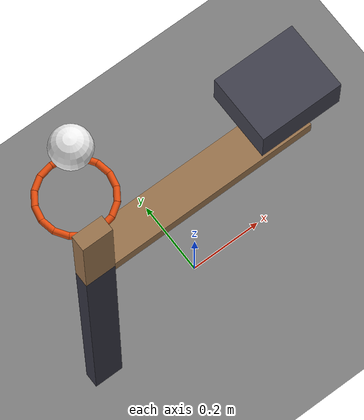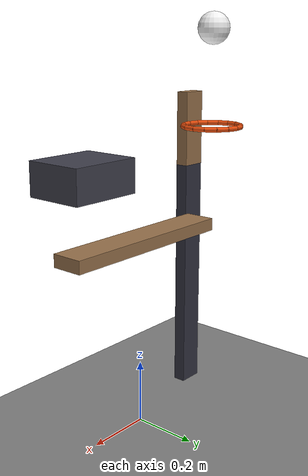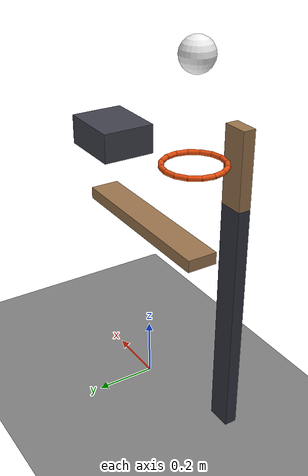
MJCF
<mujoco model="falling_ball_lever_and_cart">
  <compiler angle="radian"/>
  <option timestep="0.002"/>
  <worldbody>
    <geom name="floor" type="plane" size="6 6 0.1" friction="0.72 0.005 0.002"/>
    <body name="lever1" pos="0 0 0.6">
      <joint name="lever_hinge" type="hinge" pos="0 0 0" axis="0 1 0" limited="true" range="-0.785398 0" damping="0.04"/>
      <geom name="lever1" type="box" pos="0 0 0" size="0.3 0.05 0.02" mass="0.5" friction="0.72 0.005 0.002" solref="0.01 1" rgba="0.6 0.45 0.3 1"/>
    </body>
    <body name="ring1">
      <geom name="ring1_00" type="capsule" size="0.008" fromto="-0.208 0.04 0.92 -0.215003 0.0752069 0.92" friction="0.72 0.005 0.002" solref="0.01 1" rgba="0.9 0.3 0.05 1"/>
      <geom name="ring1_01" type="capsule" size="0.008" fromto="-0.215003 0.0752069 0.92 -0.234946 0.105054 0.92" friction="0.72 0.005 0.002" solref="0.01 1" rgba="0.9 0.3 0.05 1"/>
      <geom name="ring1_02" type="capsule" size="0.008" fromto="-0.234946 0.105054 0.92 -0.264793 0.124997 0.92" friction="0.72 0.005 0.002" solref="0.01 1" rgba="0.9 0.3 0.05 1"/>
      <geom name="ring1_03" type="capsule" size="0.008" fromto="-0.264793 0.124997 0.92 -0.3 0.132 0.92" friction="0.72 0.005 0.002" solref="0.01 1" rgba="0.9 0.3 0.05 1"/>
      <geom name="ring1_04" type="capsule" size="0.008" fromto="-0.3 0.132 0.92 -0.335207 0.124997 0.92" friction="0.72 0.005 0.002" solref="0.01 1" rgba="0.9 0.3 0.05 1"/>
      <geom name="ring1_05" type="capsule" size="0.008" fromto="-0.335207 0.124997 0.92 -0.365054 0.105054 0.92" friction="0.72 0.005 0.002" solref="0.01 1" rgba="0.9 0.3 0.05 1"/>
      <geom name="ring1_06" type="capsule" size="0.008" fromto="-0.365054 0.105054 0.92 -0.384997 0.0752069 0.92" friction="0.72 0.005 0.002" solref="0.01 1" rgba="0.9 0.3 0.05 1"/>
      <geom name="ring1_07" type="capsule" size="0.008" fromto="-0.384997 0.0752069 0.92 -0.392 0.04 0.92" friction="0.72 0.005 0.002" solref="0.01 1" rgba="0.9 0.3 0.05 1"/>
      <geom name="ring1_08" type="capsule" size="0.008" fromto="-0.392 0.04 0.92 -0.384997 0.00479312 0.92" friction="0.72 0.005 0.002" solref="0.01 1" rgba="0.9 0.3 0.05 1"/>
      <geom name="ring1_09" type="capsule" size="0.008" fromto="-0.384997 0.00479312 0.92 -0.365054 -0.0250538 0.92" friction="0.72 0.005 0.002" solref="0.01 1" rgba="0.9 0.3 0.05 1"/>
      <geom name="ring1_10" type="capsule" size="0.008" fromto="-0.365054 -0.0250538 0.92 -0.335207 -0.0449969 0.92" friction="0.72 0.005 0.002" solref="0.01 1" rgba="0.9 0.3 0.05 1"/>
      <geom name="ring1_11" type="capsule" size="0.008" fromto="-0.335207 -0.0449969 0.92 -0.3 -0.052 0.92" friction="0.72 0.005 0.002" solref="0.01 1" rgba="0.9 0.3 0.05 1"/>
      <geom name="ring1_12" type="capsule" size="0.008" fromto="-0.3 -0.052 0.92 -0.264793 -0.0449969 0.92" friction="0.72 0.005 0.002" solref="0.01 1" rgba="0.9 0.3 0.05 1"/>
      <geom name="ring1_13" type="capsule" size="0.008" fromto="-0.264793 -0.0449969 0.92 -0.234946 -0.0250538 0.92" friction="0.72 0.005 0.002" solref="0.01 1" rgba="0.9 0.3 0.05 1"/>
      <geom name="ring1_14" type="capsule" size="0.008" fromto="-0.234946 -0.0250538 0.92 -0.215003 0.00479312 0.92" friction="0.72 0.005 0.002" solref="0.01 1" rgba="0.9 0.3 0.05 1"/>
      <geom name="ring1_15" type="capsule" size="0.008" fromto="-0.215003 0.00479312 0.92 -0.208 0.04 0.92" friction="0.72 0.005 0.002" solref="0.01 1" rgba="0.9 0.3 0.05 1"/>
    </body>
    <body name="ball1" pos="-0.3 0.04 1.22">
      <freejoint/>
      <geom name="ball1" type="sphere" pos="0 0 0" size="0.05" mass="0.2" condim="6" friction="0.72 0.005 0.002" solref="0.01 1" rgba="0.95 0.95 0.95 1"/>
    </body>
    <body name="cart1" pos="0.23 0 1000.83">
      <joint name="cart_guide" type="hinge" pos="0 0 0" axis="0 1 0" limited="true" range="0 0.00349066" damping="200000"/>
      <geom name="cart1" type="box" pos="0 0 -1000" size="0.11 0.09 0.05" mass="0.5" friction="0.72 0.005 0.002" solref="0.01 1" rgba="0.25 0.25 0.3 1"/>
    </body>
    <body name="domino support">
      <geom name="domino support" type="box" pos="-0.34 -0.08 0.39" size="0.04 0.02 0.39" friction="0.72 0.005 0.002" solref="0.01 1" rgba="0.2 0.2 0.25 1"/>
    </body>
    <body name="domino1" pos="-0.34 -0.08 0.9">
      <freejoint/>
      <geom name="domino1" type="box" pos="0 0 0" size="0.04 0.02 0.12" mass="0.25" friction="0.72 0.005 0.002" solref="0.01 1" rgba="0.6 0.45 0.3 1"/>
    </body>
  </worldbody>
  <keyframe>
    <key name="start" qpos="0 -0.3 0.04 1.22 1 0 0 0 0 -0.34 -0.08 0.9 1 0 0 0" qvel="0 0 0 0 0 0 0 0 0 0 0 0 0 0"/>
  </keyframe>
</mujoco>
